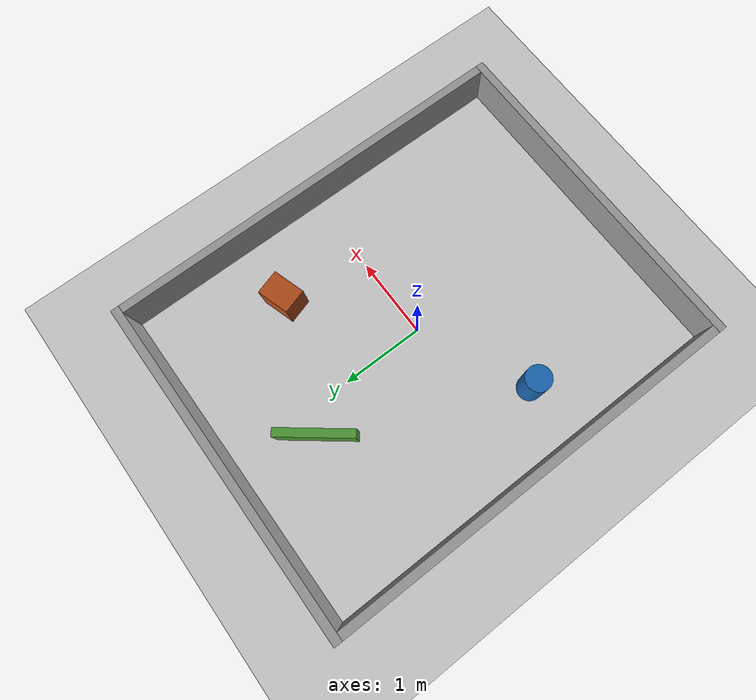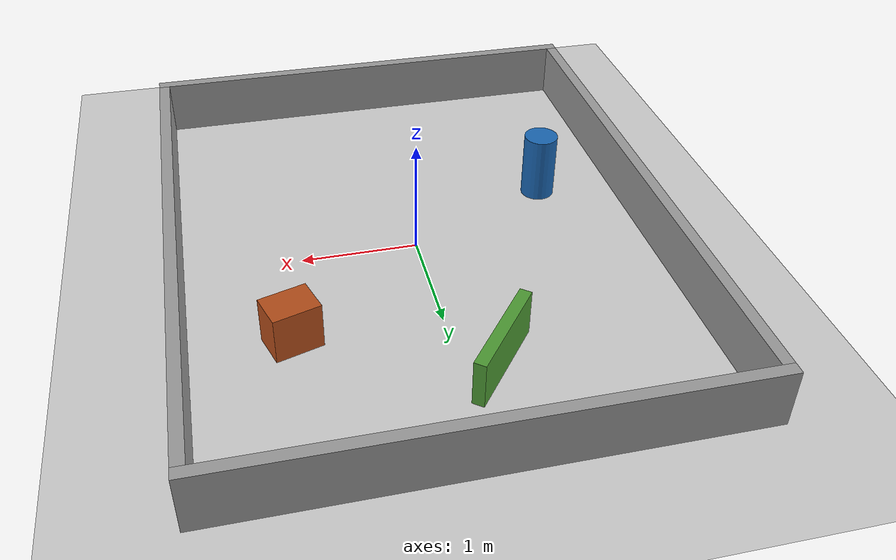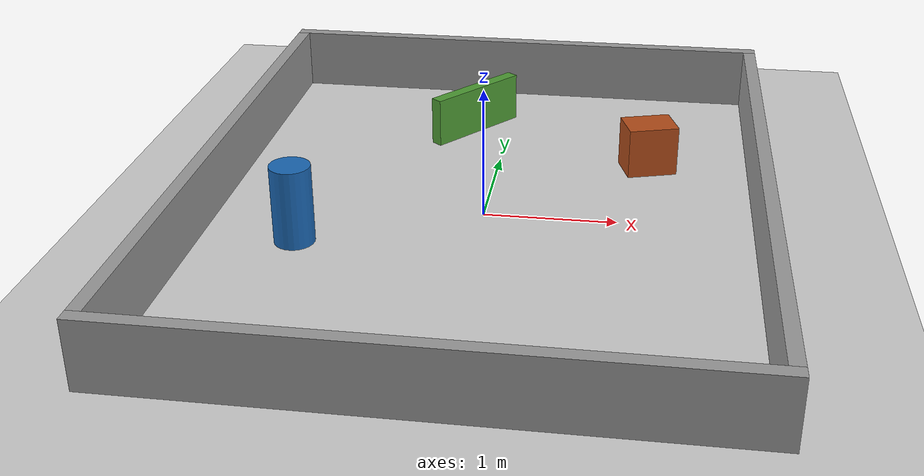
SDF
<?xml version="1.0" ?>
<sdf version="1.6">
  <world name="piece_test">
    <physics name="1ms" type="ignored">
      <max_step_size>0.001</max_step_size>
      <real_time_factor>1.0</real_time_factor>
    </physics>
    <plugin filename="gz-sim-physics-system" name="gz::sim::systems::Physics"></plugin>
    <plugin filename="gz-sim-user-commands-system" name="gz::sim::systems::UserCommands"></plugin>
    <plugin filename="gz-sim-scene-broadcaster-system"
            name="gz::sim::systems::SceneBroadcaster"></plugin>
    <plugin filename="gz-sim-contact-system" name="gz::sim::systems::Contact"></plugin>

    <light type="directional" name="soleil">
      <cast_shadows>true</cast_shadows>
      <pose>0 0 10 0 0 0</pose>
      <diffuse>0.8 0.8 0.8 1</diffuse>
      <specular>0.2 0.2 0.2 1</specular>
      <attenuation>
        <range>1000</range>
        <constant>0.9</constant>
        <linear>0.01</linear>
        <quadratic>0.001</quadratic>
      </attenuation>
      <direction>-0.5 0.1 -0.9</direction>
    </light>

    <model name="sol">
      <static>true</static>
      <link name="link">
        <collision name="collision">
          <geometry><plane><normal>0 0 1</normal><size>6 7</size></plane></geometry>
        </collision>
        <visual name="visual">
          <geometry><plane><normal>0 0 1</normal><size>6 7</size></plane></geometry>
          <material>
            <ambient>0.8 0.8 0.8 1</ambient>
            <diffuse>0.8 0.8 0.8 1</diffuse>
            <specular>0.8 0.8 0.8 1</specular>
          </material>
        </visual>
      </link>
    </model>

    <!-- Pièce ~4 m (x) x 5 m (y), murs de 0,1 m d'épaisseur et 0,5 m de haut, centrés sur
         l'origine. Le lidar (laser_z = 0,101 m, voir capteurs.xacro) reste bien sous le
         sommet des murs. -->
    <model name="mur_nord">
      <static>true</static>
      <pose>0 2.55 0.25 0 0 0</pose>
      <link name="link">
        <collision name="collision">
          <geometry><box><size>4.2 0.1 0.5</size></box></geometry>
        </collision>
        <visual name="visual">
          <geometry><box><size>4.2 0.1 0.5</size></box></geometry>
          <material><ambient>0.6 0.6 0.6 1</ambient><diffuse>0.6 0.6 0.6 1</diffuse></material>
        </visual>
      </link>
    </model>

    <model name="mur_sud">
      <static>true</static>
      <pose>0 -2.55 0.25 0 0 0</pose>
      <link name="link">
        <collision name="collision">
          <geometry><box><size>4.2 0.1 0.5</size></box></geometry>
        </collision>
        <visual name="visual">
          <geometry><box><size>4.2 0.1 0.5</size></box></geometry>
          <material><ambient>0.6 0.6 0.6 1</ambient><diffuse>0.6 0.6 0.6 1</diffuse></material>
        </visual>
      </link>
    </model>

    <model name="mur_est">
      <static>true</static>
      <pose>2.05 0 0.25 0 0 1.5708</pose>
      <link name="link">
        <collision name="collision">
          <geometry><box><size>5.0 0.1 0.5</size></box></geometry>
        </collision>
        <visual name="visual">
          <geometry><box><size>5.0 0.1 0.5</size></box></geometry>
          <material><ambient>0.6 0.6 0.6 1</ambient><diffuse>0.6 0.6 0.6 1</diffuse></material>
        </visual>
      </link>
    </model>

    <model name="mur_ouest">
      <static>true</static>
      <pose>-2.05 0 0.25 0 0 1.5708</pose>
      <link name="link">
        <collision name="collision">
          <geometry><box><size>5.0 0.1 0.5</size></box></geometry>
        </collision>
        <visual name="visual">
          <geometry><box><size>5.0 0.1 0.5</size></box></geometry>
          <material><ambient>0.6 0.6 0.6 1</ambient><diffuse>0.6 0.6 0.6 1</diffuse></material>
        </visual>
      </link>
    </model>

    <!-- Obstacles asymétriques : tailles et positions distinctes pour qu'aucune symétrie
         (miroir ou rotation) de la pièce ne rende deux poses indiscernables au scan matching. -->
    <model name="obstacle_boite">
      <static>true</static>
      <pose>1.2 1.0 0.2 0 0 0.3</pose>
      <link name="link">
        <collision name="collision">
          <geometry><box><size>0.4 0.3 0.4</size></box></geometry>
        </collision>
        <visual name="visual">
          <geometry><box><size>0.4 0.3 0.4</size></box></geometry>
          <material><ambient>0.7 0.3 0.1 1</ambient><diffuse>0.7 0.3 0.1 1</diffuse></material>
        </visual>
      </link>
    </model>

    <model name="obstacle_cylindre">
      <static>true</static>
      <pose>-1.3 -0.6 0.3 0 0 0</pose>
      <link name="link">
        <collision name="collision">
          <geometry><cylinder><radius>0.15</radius><length>0.6</length></cylinder></geometry>
        </collision>
        <visual name="visual">
          <geometry><cylinder><radius>0.15</radius><length>0.6</length></cylinder></geometry>
          <material><ambient>0.1 0.4 0.7 1</ambient><diffuse>0.1 0.4 0.7 1</diffuse></material>
        </visual>
      </link>
    </model>

    <model name="obstacle_mur_court">
      <static>true</static>
      <pose>-0.3 1.6 0.2 0 0 0.9</pose>
      <link name="link">
        <collision name="collision">
          <geometry><box><size>0.9 0.1 0.4</size></box></geometry>
        </collision>
        <visual name="visual">
          <geometry><box><size>0.9 0.1 0.4</size></box></geometry>
          <material><ambient>0.3 0.6 0.2 1</ambient><diffuse>0.3 0.6 0.2 1</diffuse></material>
        </visual>
      </link>
    </model>

  </world>
</sdf>
